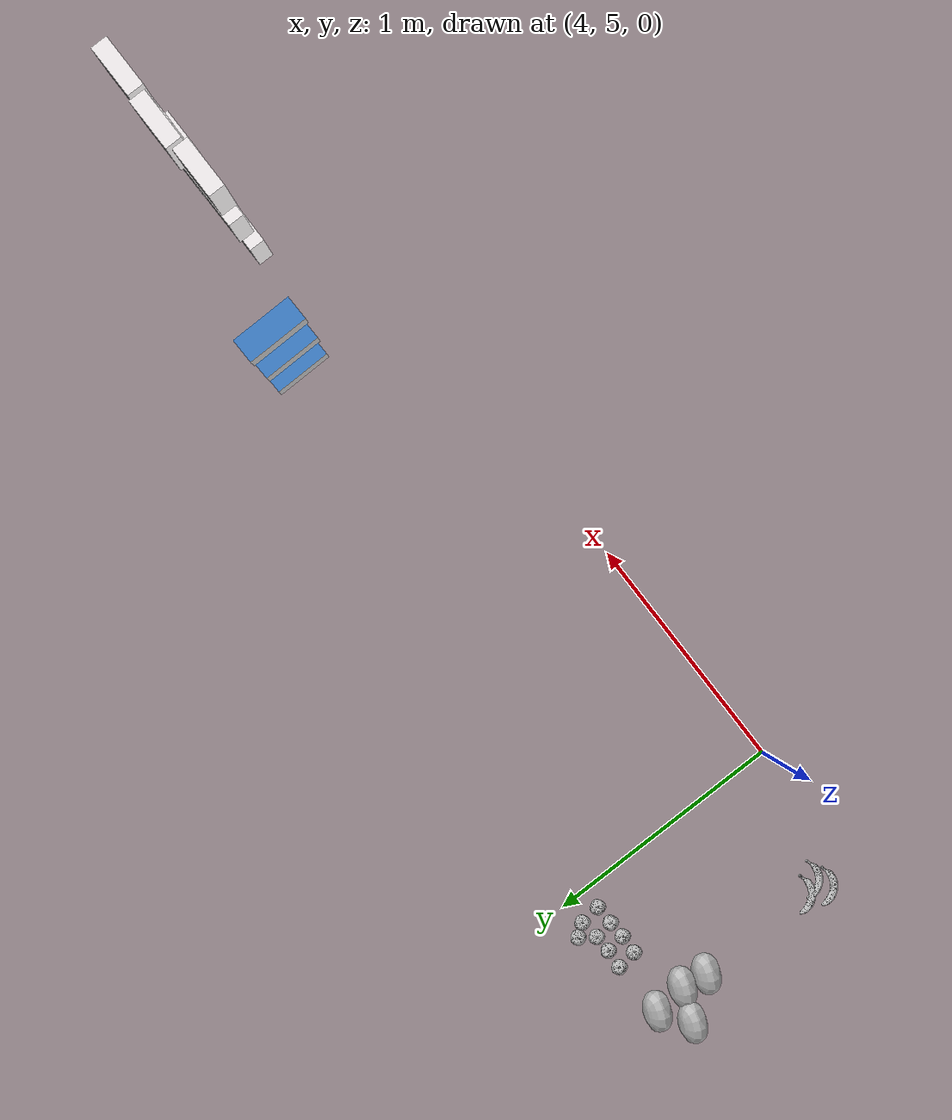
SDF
<sdf version="1.6">
 <world name="default">
  <model name="banana_clone_4">
   <link name="link_0">
    <inertial>
     <mass>1</mass>
     <inertia>
      <ixx>0.166667</ixx>
      <ixy>0</ixy>
      <ixz>0</ixz>
      <iyy>0.166667</iyy>
      <iyz>0</iyz>
      <izz>0.166667</izz>
     </inertia>
    </inertial>
    <visual name="visual">
     <geometry><mesh><uri>model://banana/meshes/banana.dae</uri><scale>1 1 1</scale></mesh></geometry>
    </visual>
    <collision name="collision">
     <geometry><mesh><uri>model://banana/meshes/banana.dae</uri><scale>1 1 1</scale></mesh></geometry>
     <surface>
      <friction>
       <ode><mu>1</mu><mu2>1</mu2><fdir1>0 0 0</fdir1><slip1>0</slip1><slip2>0</slip2></ode>
       <torsional>
        <coefficient>1</coefficient>
        <patch_radius>0</patch_radius>
        <surface_radius>0</surface_radius>
        <use_patch_radius>1</use_patch_radius>
        <ode><slip>0</slip></ode>
       </torsional>
      </friction>
      <bounce><restitution_coefficient>0</restitution_coefficient><threshold>1e+06</threshold></bounce>
      <contact>
       <collide_without_contact>0</collide_without_contact>
       <collide_without_contact_bitmask>1</collide_without_contact_bitmask>
       <collide_bitmask>1</collide_bitmask>
       <ode>
        <soft_cfm>0</soft_cfm>
        <soft_erp>0.2</soft_erp>
        <kp>1e+13</kp>
        <kd>1</kd>
        <max_vel>0.01</max_vel>
        <min_depth>0</min_depth>
       </ode>
       <bullet>
        <split_impulse>1</split_impulse>
        <split_impulse_penetration_threshold>-0.01</split_impulse_penetration_threshold>
        <soft_cfm>0</soft_cfm>
        <soft_erp>0.2</soft_erp>
        <kp>1e+13</kp>
        <kd>1</kd>
       </bullet>
      </contact>
     </surface>
    </collision>
   </link>
   <static>1</static>
   <pose>3.68859 5.18166 0.868134 0 -0 0</pose>
  </model>
  <model name="banana_clone_5">
   <link name="link_0">
    <inertial>
     <mass>1</mass>
     <inertia>
      <ixx>0.166667</ixx>
      <ixy>0</ixy>
      <ixz>0</ixz>
      <iyy>0.166667</iyy>
      <iyz>0</iyz>
      <izz>0.166667</izz>
     </inertia>
    </inertial>
    <visual name="visual">
     <geometry><mesh><uri>model://banana/meshes/banana.dae</uri><scale>1 1 1</scale></mesh></geometry>
    </visual>
    <collision name="collision">
     <geometry><mesh><uri>model://banana/meshes/banana.dae</uri><scale>1 1 1</scale></mesh></geometry>
     <surface>
      <friction>
       <ode><mu>1</mu><mu2>1</mu2><fdir1>0 0 0</fdir1><slip1>0</slip1><slip2>0</slip2></ode>
       <torsional>
        <coefficient>1</coefficient>
        <patch_radius>0</patch_radius>
        <surface_radius>0</surface_radius>
        <use_patch_radius>1</use_patch_radius>
        <ode><slip>0</slip></ode>
       </torsional>
      </friction>
      <bounce><restitution_coefficient>0</restitution_coefficient><threshold>1e+06</threshold></bounce>
      <contact>
       <collide_without_contact>0</collide_without_contact>
       <collide_without_contact_bitmask>1</collide_without_contact_bitmask>
       <collide_bitmask>1</collide_bitmask>
       <ode>
        <soft_cfm>0</soft_cfm>
        <soft_erp>0.2</soft_erp>
        <kp>1e+13</kp>
        <kd>1</kd>
        <max_vel>0.01</max_vel>
        <min_depth>0</min_depth>
       </ode>
       <bullet>
        <split_impulse>1</split_impulse>
        <split_impulse_penetration_threshold>-0.01</split_impulse_penetration_threshold>
        <soft_cfm>0</soft_cfm>
        <soft_erp>0.2</soft_erp>
        <kp>1e+13</kp>
        <kd>1</kd>
       </bullet>
      </contact>
     </surface>
    </collision>
   </link>
   <static>1</static>
   <pose>3.63936 5.15513 0.868134 0 -0 0</pose>
  </model>
  <model name="banana_clone_11">
   <link name="link_0">
    <inertial>
     <mass>1</mass>
     <inertia>
      <ixx>0.166667</ixx>
      <ixy>0</ixy>
      <ixz>0</ixz>
      <iyy>0.166667</iyy>
      <iyz>0</iyz>
      <izz>0.166667</izz>
     </inertia>
    </inertial>
    <visual name="visual">
     <geometry><mesh><uri>model://banana/meshes/banana.dae</uri><scale>1 1 1</scale></mesh></geometry>
    </visual>
    <collision name="collision">
     <geometry><mesh><uri>model://banana/meshes/banana.dae</uri><scale>1 1 1</scale></mesh></geometry>
     <surface>
      <friction>
       <ode><mu>1</mu><mu2>1</mu2><fdir1>0 0 0</fdir1><slip1>0</slip1><slip2>0</slip2></ode>
       <torsional>
        <coefficient>1</coefficient>
        <patch_radius>0</patch_radius>
        <surface_radius>0</surface_radius>
        <use_patch_radius>1</use_patch_radius>
        <ode><slip>0</slip></ode>
       </torsional>
      </friction>
      <bounce><restitution_coefficient>0</restitution_coefficient><threshold>1e+06</threshold></bounce>
      <contact>
       <collide_without_contact>0</collide_without_contact>
       <collide_without_contact_bitmask>1</collide_without_contact_bitmask>
       <collide_bitmask>1</collide_bitmask>
       <ode>
        <soft_cfm>0</soft_cfm>
        <soft_erp>0.2</soft_erp>
        <kp>1e+13</kp>
        <kd>1</kd>
        <max_vel>0.01</max_vel>
        <min_depth>0</min_depth>
       </ode>
       <bullet>
        <split_impulse>1</split_impulse>
        <split_impulse_penetration_threshold>-0.01</split_impulse_penetration_threshold>
        <soft_cfm>0</soft_cfm>
        <soft_erp>0.2</soft_erp>
        <kp>1e+13</kp>
        <kd>1</kd>
       </bullet>
      </contact>
     </surface>
    </collision>
   </link>
   <static>1</static>
   <pose>3.66313 5.23262 0.868134 0 -0 0</pose>
  </model>
  <model name="apple">
   <link name="link_0">
    <inertial>
     <mass>1</mass>
     <inertia>
      <ixx>0.166667</ixx>
      <ixy>0</ixy>
      <ixz>0</ixz>
      <iyy>0.166667</iyy>
      <iyz>0</iyz>
      <izz>0.166667</izz>
     </inertia>
    </inertial>
    <visual name="visual">
     <geometry><mesh><uri>model://apple/meshes/apple.dae</uri><scale>1 1 1</scale></mesh></geometry>
    </visual>
    <collision name="collision">
     <geometry><mesh><uri>model://apple/meshes/apple.dae</uri><scale>1 1 1</scale></mesh></geometry>
     <surface>
      <friction>
       <ode><mu>1</mu><mu2>1</mu2><fdir1>0 0 0</fdir1><slip1>0</slip1><slip2>0</slip2></ode>
       <torsional>
        <coefficient>1</coefficient>
        <patch_radius>0</patch_radius>
        <surface_radius>0</surface_radius>
        <use_patch_radius>1</use_patch_radius>
        <ode><slip>0</slip></ode>
       </torsional>
      </friction>
      <bounce><restitution_coefficient>0</restitution_coefficient><threshold>1e+06</threshold></bounce>
      <contact>
       <collide_without_contact>0</collide_without_contact>
       <collide_without_contact_bitmask>1</collide_without_contact_bitmask>
       <collide_bitmask>1</collide_bitmask>
       <ode>
        <soft_cfm>0</soft_cfm>
        <soft_erp>0.2</soft_erp>
        <kp>1e+13</kp>
        <kd>1</kd>
        <max_vel>0.01</max_vel>
        <min_depth>0</min_depth>
       </ode>
       <bullet>
        <split_impulse>1</split_impulse>
        <split_impulse_penetration_threshold>-0.01</split_impulse_penetration_threshold>
        <soft_cfm>0</soft_cfm>
        <soft_erp>0.2</soft_erp>
        <kp>1e+13</kp>
        <kd>1</kd>
       </bullet>
      </contact>
     </surface>
    </collision>
   </link>
   <static>1</static>
   <pose>4.07293 5.83603 0.862702 0 -0 0</pose>
  </model>
  <model name="apple_clone">
   <link name="link_0">
    <inertial>
     <mass>1</mass>
     <inertia>
      <ixx>0.166667</ixx>
      <ixy>0</ixy>
      <ixz>0</ixz>
      <iyy>0.166667</iyy>
      <iyz>0</iyz>
      <izz>0.166667</izz>
     </inertia>
    </inertial>
    <visual name="visual">
     <geometry><mesh><uri>model://apple/meshes/apple.dae</uri><scale>1 1 1</scale></mesh></geometry>
    </visual>
    <collision name="collision">
     <geometry><mesh><uri>model://apple/meshes/apple.dae</uri><scale>1 1 1</scale></mesh></geometry>
     <surface>
      <friction>
       <ode><mu>1</mu><mu2>1</mu2><fdir1>0 0 0</fdir1><slip1>0</slip1><slip2>0</slip2></ode>
       <torsional>
        <coefficient>1</coefficient>
        <patch_radius>0</patch_radius>
        <surface_radius>0</surface_radius>
        <use_patch_radius>1</use_patch_radius>
        <ode><slip>0</slip></ode>
       </torsional>
      </friction>
      <bounce><restitution_coefficient>0</restitution_coefficient><threshold>1e+06</threshold></bounce>
      <contact>
       <collide_without_contact>0</collide_without_contact>
       <collide_without_contact_bitmask>1</collide_without_contact_bitmask>
       <collide_bitmask>1</collide_bitmask>
       <ode>
        <soft_cfm>0</soft_cfm>
        <soft_erp>0.2</soft_erp>
        <kp>1e+13</kp>
        <kd>1</kd>
        <max_vel>0.01</max_vel>
        <min_depth>0</min_depth>
       </ode>
       <bullet>
        <split_impulse>1</split_impulse>
        <split_impulse_penetration_threshold>-0.01</split_impulse_penetration_threshold>
        <soft_cfm>0</soft_cfm>
        <soft_erp>0.2</soft_erp>
        <kp>1e+13</kp>
        <kd>1</kd>
       </bullet>
      </contact>
     </surface>
    </collision>
   </link>
   <static>1</static>
   <pose>4.00379 5.8338 0.862702 0 -0 0</pose>
  </model>
  <model name="apple_clone_1">
   <link name="link_0">
    <inertial>
     <mass>1</mass>
     <inertia>
      <ixx>0.166667</ixx>
      <ixy>0</ixy>
      <ixz>0</ixz>
      <iyy>0.166667</iyy>
      <iyz>0</iyz>
      <izz>0.166667</izz>
     </inertia>
    </inertial>
    <visual name="visual">
     <geometry><mesh><uri>model://apple/meshes/apple.dae</uri><scale>1 1 1</scale></mesh></geometry>
    </visual>
    <collision name="collision">
     <geometry><mesh><uri>model://apple/meshes/apple.dae</uri><scale>1 1 1</scale></mesh></geometry>
     <surface>
      <friction>
       <ode><mu>1</mu><mu2>1</mu2><fdir1>0 0 0</fdir1><slip1>0</slip1><slip2>0</slip2></ode>
       <torsional>
        <coefficient>1</coefficient>
        <patch_radius>0</patch_radius>
        <surface_radius>0</surface_radius>
        <use_patch_radius>1</use_patch_radius>
        <ode><slip>0</slip></ode>
       </torsional>
      </friction>
      <bounce><restitution_coefficient>0</restitution_coefficient><threshold>1e+06</threshold></bounce>
      <contact>
       <collide_without_contact>0</collide_without_contact>
       <collide_without_contact_bitmask>1</collide_without_contact_bitmask>
       <collide_bitmask>1</collide_bitmask>
       <ode>
        <soft_cfm>0</soft_cfm>
        <soft_erp>0.2</soft_erp>
        <kp>1e+13</kp>
        <kd>1</kd>
        <max_vel>0.01</max_vel>
        <min_depth>0</min_depth>
       </ode>
       <bullet>
        <split_impulse>1</split_impulse>
        <split_impulse_penetration_threshold>-0.01</split_impulse_penetration_threshold>
        <soft_cfm>0</soft_cfm>
        <soft_erp>0.2</soft_erp>
        <kp>1e+13</kp>
        <kd>1</kd>
       </bullet>
      </contact>
     </surface>
    </collision>
   </link>
   <static>1</static>
   <pose>3.94118 5.82977 0.862702 0 -0 0</pose>
  </model>
  <model name="apple_clone_2">
   <link name="link_0">
    <inertial>
     <mass>1</mass>
     <inertia>
      <ixx>0.166667</ixx>
      <ixy>0</ixy>
      <ixz>0</ixz>
      <iyy>0.166667</iyy>
      <iyz>0</iyz>
      <izz>0.166667</izz>
     </inertia>
    </inertial>
    <visual name="visual">
     <geometry><mesh><uri>model://apple/meshes/apple.dae</uri><scale>1 1 1</scale></mesh></geometry>
    </visual>
    <collision name="collision">
     <geometry><mesh><uri>model://apple/meshes/apple.dae</uri><scale>1 1 1</scale></mesh></geometry>
     <surface>
      <friction>
       <ode><mu>1</mu><mu2>1</mu2><fdir1>0 0 0</fdir1><slip1>0</slip1><slip2>0</slip2></ode>
       <torsional>
        <coefficient>1</coefficient>
        <patch_radius>0</patch_radius>
        <surface_radius>0</surface_radius>
        <use_patch_radius>1</use_patch_radius>
        <ode><slip>0</slip></ode>
       </torsional>
      </friction>
      <bounce><restitution_coefficient>0</restitution_coefficient><threshold>1e+06</threshold></bounce>
      <contact>
       <collide_without_contact>0</collide_without_contact>
       <collide_without_contact_bitmask>1</collide_without_contact_bitmask>
       <collide_bitmask>1</collide_bitmask>
       <ode>
        <soft_cfm>0</soft_cfm>
        <soft_erp>0.2</soft_erp>
        <kp>1e+13</kp>
        <kd>1</kd>
        <max_vel>0.01</max_vel>
        <min_depth>0</min_depth>
       </ode>
       <bullet>
        <split_impulse>1</split_impulse>
        <split_impulse_penetration_threshold>-0.01</split_impulse_penetration_threshold>
        <soft_cfm>0</soft_cfm>
        <soft_erp>0.2</soft_erp>
        <kp>1e+13</kp>
        <kd>1</kd>
       </bullet>
      </contact>
     </surface>
    </collision>
   </link>
   <static>1</static>
   <pose>3.874 5.83246 0.862702 0 -0 0</pose>
  </model>
  <model name="apple_clone_3">
   <link name="link_0">
    <inertial>
     <mass>1</mass>
     <inertia>
      <ixx>0.166667</ixx>
      <ixy>0</ixy>
      <ixz>0</ixz>
      <iyy>0.166667</iyy>
      <iyz>0</iyz>
      <izz>0.166667</izz>
     </inertia>
    </inertial>
    <visual name="visual">
     <geometry><mesh><uri>model://apple/meshes/apple.dae</uri><scale>1 1 1</scale></mesh></geometry>
    </visual>
    <collision name="collision">
     <geometry><mesh><uri>model://apple/meshes/apple.dae</uri><scale>1 1 1</scale></mesh></geometry>
     <surface>
      <friction>
       <ode><mu>1</mu><mu2>1</mu2><fdir1>0 0 0</fdir1><slip1>0</slip1><slip2>0</slip2></ode>
       <torsional>
        <coefficient>1</coefficient>
        <patch_radius>0</patch_radius>
        <surface_radius>0</surface_radius>
        <use_patch_radius>1</use_patch_radius>
        <ode><slip>0</slip></ode>
       </torsional>
      </friction>
      <bounce><restitution_coefficient>0</restitution_coefficient><threshold>1e+06</threshold></bounce>
      <contact>
       <collide_without_contact>0</collide_without_contact>
       <collide_without_contact_bitmask>1</collide_without_contact_bitmask>
       <collide_bitmask>1</collide_bitmask>
       <ode>
        <soft_cfm>0</soft_cfm>
        <soft_erp>0.2</soft_erp>
        <kp>1e+13</kp>
        <kd>1</kd>
        <max_vel>0.01</max_vel>
        <min_depth>0</min_depth>
       </ode>
       <bullet>
        <split_impulse>1</split_impulse>
        <split_impulse_penetration_threshold>-0.01</split_impulse_penetration_threshold>
        <soft_cfm>0</soft_cfm>
        <soft_erp>0.2</soft_erp>
        <kp>1e+13</kp>
        <kd>1</kd>
       </bullet>
      </contact>
     </surface>
    </collision>
   </link>
   <static>1</static>
   <pose>3.86465 5.90349 0.862702 0 -0 0</pose>
  </model>
  <model name="apple_clone_4">
   <link name="link_0">
    <inertial>
     <mass>1</mass>
     <inertia>
      <ixx>0.166667</ixx>
      <ixy>0</ixy>
      <ixz>0</ixz>
      <iyy>0.166667</iyy>
      <iyz>0</iyz>
      <izz>0.166667</izz>
     </inertia>
    </inertial>
    <visual name="visual">
     <geometry><mesh><uri>model://apple/meshes/apple.dae</uri><scale>1 1 1</scale></mesh></geometry>
    </visual>
    <collision name="collision">
     <geometry><mesh><uri>model://apple/meshes/apple.dae</uri><scale>1 1 1</scale></mesh></geometry>
     <surface>
      <friction>
       <ode><mu>1</mu><mu2>1</mu2><fdir1>0 0 0</fdir1><slip1>0</slip1><slip2>0</slip2></ode>
       <torsional>
        <coefficient>1</coefficient>
        <patch_radius>0</patch_radius>
        <surface_radius>0</surface_radius>
        <use_patch_radius>1</use_patch_radius>
        <ode><slip>0</slip></ode>
       </torsional>
      </friction>
      <bounce><restitution_coefficient>0</restitution_coefficient><threshold>1e+06</threshold></bounce>
      <contact>
       <collide_without_contact>0</collide_without_contact>
       <collide_without_contact_bitmask>1</collide_without_contact_bitmask>
       <collide_bitmask>1</collide_bitmask>
       <ode>
        <soft_cfm>0</soft_cfm>
        <soft_erp>0.2</soft_erp>
        <kp>1e+13</kp>
        <kd>1</kd>
        <max_vel>0.01</max_vel>
        <min_depth>0</min_depth>
       </ode>
       <bullet>
        <split_impulse>1</split_impulse>
        <split_impulse_penetration_threshold>-0.01</split_impulse_penetration_threshold>
        <soft_cfm>0</soft_cfm>
        <soft_erp>0.2</soft_erp>
        <kp>1e+13</kp>
        <kd>1</kd>
       </bullet>
      </contact>
     </surface>
    </collision>
   </link>
   <static>1</static>
   <pose>3.93205 5.89865 0.862702 0 -0 0</pose>
  </model>
  <model name="apple_clone_5">
   <link name="link_0">
    <inertial>
     <mass>1</mass>
     <inertia>
      <ixx>0.166667</ixx>
      <ixy>0</ixy>
      <ixz>0</ixz>
      <iyy>0.166667</iyy>
      <iyz>0</iyz>
      <izz>0.166667</izz>
     </inertia>
    </inertial>
    <visual name="visual">
     <geometry><mesh><uri>model://apple/meshes/apple.dae</uri><scale>1 1 1</scale></mesh></geometry>
    </visual>
    <collision name="collision">
     <geometry><mesh><uri>model://apple/meshes/apple.dae</uri><scale>1 1 1</scale></mesh></geometry>
     <surface>
      <friction>
       <ode><mu>1</mu><mu2>1</mu2><fdir1>0 0 0</fdir1><slip1>0</slip1><slip2>0</slip2></ode>
       <torsional>
        <coefficient>1</coefficient>
        <patch_radius>0</patch_radius>
        <surface_radius>0</surface_radius>
        <use_patch_radius>1</use_patch_radius>
        <ode><slip>0</slip></ode>
       </torsional>
      </friction>
      <bounce><restitution_coefficient>0</restitution_coefficient><threshold>1e+06</threshold></bounce>
      <contact>
       <collide_without_contact>0</collide_without_contact>
       <collide_without_contact_bitmask>1</collide_without_contact_bitmask>
       <collide_bitmask>1</collide_bitmask>
       <ode>
        <soft_cfm>0</soft_cfm>
        <soft_erp>0.2</soft_erp>
        <kp>1e+13</kp>
        <kd>1</kd>
        <max_vel>0.01</max_vel>
        <min_depth>0</min_depth>
       </ode>
       <bullet>
        <split_impulse>1</split_impulse>
        <split_impulse_penetration_threshold>-0.01</split_impulse_penetration_threshold>
        <soft_cfm>0</soft_cfm>
        <soft_erp>0.2</soft_erp>
        <kp>1e+13</kp>
        <kd>1</kd>
       </bullet>
      </contact>
     </surface>
    </collision>
   </link>
   <static>1</static>
   <pose>3.99433 5.90128 0.862702 0 -0 0</pose>
  </model>
  <model name="apple_clone_6">
   <link name="link_0">
    <inertial>
     <mass>1</mass>
     <inertia>
      <ixx>0.166667</ixx>
      <ixy>0</ixy>
      <ixz>0</ixz>
      <iyy>0.166667</iyy>
      <iyz>0</iyz>
      <izz>0.166667</izz>
     </inertia>
    </inertial>
    <visual name="visual">
     <geometry><mesh><uri>model://apple/meshes/apple.dae</uri><scale>1 1 1</scale></mesh></geometry>
    </visual>
    <collision name="collision">
     <geometry><mesh><uri>model://apple/meshes/apple.dae</uri><scale>1 1 1</scale></mesh></geometry>
     <surface>
      <friction>
       <ode><mu>1</mu><mu2>1</mu2><fdir1>0 0 0</fdir1><slip1>0</slip1><slip2>0</slip2></ode>
       <torsional>
        <coefficient>1</coefficient>
        <patch_radius>0</patch_radius>
        <surface_radius>0</surface_radius>
        <use_patch_radius>1</use_patch_radius>
        <ode><slip>0</slip></ode>
       </torsional>
      </friction>
      <bounce><restitution_coefficient>0</restitution_coefficient><threshold>1e+06</threshold></bounce>
      <contact>
       <collide_without_contact>0</collide_without_contact>
       <collide_without_contact_bitmask>1</collide_without_contact_bitmask>
       <collide_bitmask>1</collide_bitmask>
       <ode>
        <soft_cfm>0</soft_cfm>
        <soft_erp>0.2</soft_erp>
        <kp>1e+13</kp>
        <kd>1</kd>
        <max_vel>0.01</max_vel>
        <min_depth>0</min_depth>
       </ode>
       <bullet>
        <split_impulse>1</split_impulse>
        <split_impulse_penetration_threshold>-0.01</split_impulse_penetration_threshold>
        <soft_cfm>0</soft_cfm>
        <soft_erp>0.2</soft_erp>
        <kp>1e+13</kp>
        <kd>1</kd>
       </bullet>
      </contact>
     </surface>
    </collision>
   </link>
   <static>1</static>
   <pose>4.06365 5.91065 0.862702 0 -0 0</pose>
  </model>
  <model name="apple_clone_11">
   <link name="link_0">
    <inertial>
     <mass>1</mass>
     <inertia>
      <ixx>0.166667</ixx>
      <ixy>0</ixy>
      <ixz>0</ixz>
      <iyy>0.166667</iyy>
      <iyz>0</iyz>
      <izz>0.166667</izz>
     </inertia>
    </inertial>
    <visual name="visual">
     <geometry><mesh><uri>model://apple/meshes/apple.dae</uri><scale>1 1 1</scale></mesh></geometry>
    </visual>
    <collision name="collision">
     <geometry><mesh><uri>model://apple/meshes/apple.dae</uri><scale>1 1 1</scale></mesh></geometry>
     <surface>
      <friction>
       <ode><mu>1</mu><mu2>1</mu2><fdir1>0 0 0</fdir1><slip1>0</slip1><slip2>0</slip2></ode>
       <torsional>
        <coefficient>1</coefficient>
        <patch_radius>0</patch_radius>
        <surface_radius>0</surface_radius>
        <use_patch_radius>1</use_patch_radius>
        <ode><slip>0</slip></ode>
       </torsional>
      </friction>
      <bounce><restitution_coefficient>0</restitution_coefficient><threshold>1e+06</threshold></bounce>
      <contact>
       <collide_without_contact>0</collide_without_contact>
       <collide_without_contact_bitmask>1</collide_without_contact_bitmask>
       <collide_bitmask>1</collide_bitmask>
       <ode>
        <soft_cfm>0</soft_cfm>
        <soft_erp>0.2</soft_erp>
        <kp>1e+13</kp>
        <kd>1</kd>
        <max_vel>0.01</max_vel>
        <min_depth>0</min_depth>
       </ode>
       <bullet>
        <split_impulse>1</split_impulse>
        <split_impulse_penetration_threshold>-0.01</split_impulse_penetration_threshold>
        <soft_cfm>0</soft_cfm>
        <soft_erp>0.2</soft_erp>
        <kp>1e+13</kp>
        <kd>1</kd>
       </bullet>
      </contact>
     </surface>
    </collision>
   </link>
   <static>1</static>
   <pose>4.03165 5.95299 0.862702 0 -0 0</pose>
  </model>
  <model name="mango_clone_4">
   <link name="link_0">
    <inertial>
     <mass>1</mass>
     <inertia>
      <ixx>0.166667</ixx>
      <ixy>0</ixy>
      <ixz>0</ixz>
      <iyy>0.166667</iyy>
      <iyz>0</iyz>
      <izz>0.166667</izz>
     </inertia>
    </inertial>
    <visual name="visual">
     <geometry><mesh><uri>model://mango/meshes/mango.dae</uri><scale>1 1 1</scale></mesh></geometry>
    </visual>
    <collision name="collision">
     <geometry><mesh><uri>model://mango/meshes/mango.dae</uri><scale>1 1 1</scale></mesh></geometry>
     <surface>
      <friction>
       <ode><mu>1</mu><mu2>1</mu2><fdir1>0 0 0</fdir1><slip1>0</slip1><slip2>0</slip2></ode>
       <torsional>
        <coefficient>1</coefficient>
        <patch_radius>0</patch_radius>
        <surface_radius>0</surface_radius>
        <use_patch_radius>1</use_patch_radius>
        <ode><slip>0</slip></ode>
       </torsional>
      </friction>
      <bounce><restitution_coefficient>0</restitution_coefficient><threshold>1e+06</threshold></bounce>
      <contact>
       <collide_without_contact>0</collide_without_contact>
       <collide_without_contact_bitmask>1</collide_without_contact_bitmask>
       <collide_bitmask>1</collide_bitmask>
       <ode>
        <soft_cfm>0</soft_cfm>
        <soft_erp>0.2</soft_erp>
        <kp>1e+13</kp>
        <kd>1</kd>
        <max_vel>0.01</max_vel>
        <min_depth>0</min_depth>
       </ode>
       <bullet>
        <split_impulse>1</split_impulse>
        <split_impulse_penetration_threshold>-0.01</split_impulse_penetration_threshold>
        <soft_cfm>0</soft_cfm>
        <soft_erp>0.2</soft_erp>
        <kp>1e+13</kp>
        <kd>1</kd>
       </bullet>
      </contact>
     </surface>
    </collision>
   </link>
   <static>1</static>
   <pose>3.6463 5.80697 1.08404 0 -0 0</pose>
  </model>
  <model name="mango_clone_5">
   <link name="link_0">
    <inertial>
     <mass>1</mass>
     <inertia>
      <ixx>0.166667</ixx>
      <ixy>0</ixy>
      <ixz>0</ixz>
      <iyy>0.166667</iyy>
      <iyz>0</iyz>
      <izz>0.166667</izz>
     </inertia>
    </inertial>
    <visual name="visual">
     <geometry><mesh><uri>model://mango/meshes/mango.dae</uri><scale>1 1 1</scale></mesh></geometry>
    </visual>
    <collision name="collision">
     <geometry><mesh><uri>model://mango/meshes/mango.dae</uri><scale>1 1 1</scale></mesh></geometry>
     <surface>
      <friction>
       <ode><mu>1</mu><mu2>1</mu2><fdir1>0 0 0</fdir1><slip1>0</slip1><slip2>0</slip2></ode>
       <torsional>
        <coefficient>1</coefficient>
        <patch_radius>0</patch_radius>
        <surface_radius>0</surface_radius>
        <use_patch_radius>1</use_patch_radius>
        <ode><slip>0</slip></ode>
       </torsional>
      </friction>
      <bounce><restitution_coefficient>0</restitution_coefficient><threshold>1e+06</threshold></bounce>
      <contact>
       <collide_without_contact>0</collide_without_contact>
       <collide_without_contact_bitmask>1</collide_without_contact_bitmask>
       <collide_bitmask>1</collide_bitmask>
       <ode>
        <soft_cfm>0</soft_cfm>
        <soft_erp>0.2</soft_erp>
        <kp>1e+13</kp>
        <kd>1</kd>
        <max_vel>0.01</max_vel>
        <min_depth>0</min_depth>
       </ode>
       <bullet>
        <split_impulse>1</split_impulse>
        <split_impulse_penetration_threshold>-0.01</split_impulse_penetration_threshold>
        <soft_cfm>0</soft_cfm>
        <soft_erp>0.2</soft_erp>
        <kp>1e+13</kp>
        <kd>1</kd>
       </bullet>
      </contact>
     </surface>
    </collision>
   </link>
   <static>1</static>
   <pose>3.74611 5.67241 1.08404 0 -0 0</pose>
  </model>
  <model name="mango_clone_6">
   <link name="link_0">
    <inertial>
     <mass>1</mass>
     <inertia>
      <ixx>0.166667</ixx>
      <ixy>0</ixy>
      <ixz>0</ixz>
      <iyy>0.166667</iyy>
      <iyz>0</iyz>
      <izz>0.166667</izz>
     </inertia>
    </inertial>
    <visual name="visual">
     <geometry><mesh><uri>model://mango/meshes/mango.dae</uri><scale>1 1 1</scale></mesh></geometry>
    </visual>
    <collision name="collision">
     <geometry><mesh><uri>model://mango/meshes/mango.dae</uri><scale>1 1 1</scale></mesh></geometry>
     <surface>
      <friction>
       <ode><mu>1</mu><mu2>1</mu2><fdir1>0 0 0</fdir1><slip1>0</slip1><slip2>0</slip2></ode>
       <torsional>
        <coefficient>1</coefficient>
        <patch_radius>0</patch_radius>
        <surface_radius>0</surface_radius>
        <use_patch_radius>1</use_patch_radius>
        <ode><slip>0</slip></ode>
       </torsional>
      </friction>
      <bounce><restitution_coefficient>0</restitution_coefficient><threshold>1e+06</threshold></bounce>
      <contact>
       <collide_without_contact>0</collide_without_contact>
       <collide_without_contact_bitmask>1</collide_without_contact_bitmask>
       <collide_bitmask>1</collide_bitmask>
       <ode>
        <soft_cfm>0</soft_cfm>
        <soft_erp>0.2</soft_erp>
        <kp>1e+13</kp>
        <kd>1</kd>
        <max_vel>0.01</max_vel>
        <min_depth>0</min_depth>
       </ode>
       <bullet>
        <split_impulse>1</split_impulse>
        <split_impulse_penetration_threshold>-0.01</split_impulse_penetration_threshold>
        <soft_cfm>0</soft_cfm>
        <soft_erp>0.2</soft_erp>
        <kp>1e+13</kp>
        <kd>1</kd>
       </bullet>
      </contact>
     </surface>
    </collision>
   </link>
   <static>1</static>
   <pose>3.76041 5.76153 1.08404 0 -0 0</pose>
  </model>
  <model name="mango_clone_7">
   <link name="link_0">
    <inertial>
     <mass>1</mass>
     <inertia>
      <ixx>0.166667</ixx>
      <ixy>0</ixy>
      <ixz>0</ixz>
      <iyy>0.166667</iyy>
      <iyz>0</iyz>
      <izz>0.166667</izz>
     </inertia>
    </inertial>
    <visual name="visual">
     <geometry><mesh><uri>model://mango/meshes/mango.dae</uri><scale>1 1 1</scale></mesh></geometry>
    </visual>
    <collision name="collision">
     <geometry><mesh><uri>model://mango/meshes/mango.dae</uri><scale>1 1 1</scale></mesh></geometry>
     <surface>
      <friction>
       <ode><mu>1</mu><mu2>1</mu2><fdir1>0 0 0</fdir1><slip1>0</slip1><slip2>0</slip2></ode>
       <torsional>
        <coefficient>1</coefficient>
        <patch_radius>0</patch_radius>
        <surface_radius>0</surface_radius>
        <use_patch_radius>1</use_patch_radius>
        <ode><slip>0</slip></ode>
       </torsional>
      </friction>
      <bounce><restitution_coefficient>0</restitution_coefficient><threshold>1e+06</threshold></bounce>
      <contact>
       <collide_without_contact>0</collide_without_contact>
       <collide_without_contact_bitmask>1</collide_without_contact_bitmask>
       <collide_bitmask>1</collide_bitmask>
       <ode>
        <soft_cfm>0</soft_cfm>
        <soft_erp>0.2</soft_erp>
        <kp>1e+13</kp>
        <kd>1</kd>
        <max_vel>0.01</max_vel>
        <min_depth>0</min_depth>
       </ode>
       <bullet>
        <split_impulse>1</split_impulse>
        <split_impulse_penetration_threshold>-0.01</split_impulse_penetration_threshold>
        <soft_cfm>0</soft_cfm>
        <soft_erp>0.2</soft_erp>
        <kp>1e+13</kp>
        <kd>1</kd>
       </bullet>
      </contact>
     </surface>
    </collision>
   </link>
   <static>1</static>
   <pose>3.74786 5.87646 1.08404 0 -0 0</pose>
  </model>
  <model name="cereals">
   <link name="link_1">
    <inertial>
     <mass>1</mass>
     <inertia>
      <ixx>0.166667</ixx>
      <ixy>0</ixy>
      <ixz>0</ixz>
      <iyy>0.166667</iyy>
      <iyz>0</iyz>
      <izz>0.166667</izz>
     </inertia>
    </inertial>
    <visual name="visual">
     <geometry><mesh><uri>model://cereals/meshes/cereals.dae</uri><scale>0.6 0.6 0.6</scale></mesh></geometry>
    </visual>
    <collision name="collision">
     <geometry><mesh><uri>model://cereals/meshes/cereals.dae</uri><scale>0.6 0.6 0.6</scale></mesh></geometry>
     <surface>
      <friction>
       <ode><mu>1</mu><mu2>1</mu2><fdir1>0 0 0</fdir1><slip1>0</slip1><slip2>0</slip2></ode>
       <torsional>
        <coefficient>1</coefficient>
        <patch_radius>0</patch_radius>
        <surface_radius>0</surface_radius>
        <use_patch_radius>1</use_patch_radius>
        <ode><slip>0</slip></ode>
       </torsional>
      </friction>
      <bounce><restitution_coefficient>0</restitution_coefficient><threshold>1e+06</threshold></bounce>
      <contact>
       <collide_without_contact>0</collide_without_contact>
       <collide_without_contact_bitmask>1</collide_without_contact_bitmask>
       <collide_bitmask>1</collide_bitmask>
       <ode>
        <soft_cfm>0</soft_cfm>
        <soft_erp>0.2</soft_erp>
        <kp>1e+13</kp>
        <kd>1</kd>
        <max_vel>0.01</max_vel>
        <min_depth>0</min_depth>
       </ode>
       <bullet>
        <split_impulse>1</split_impulse>
        <split_impulse_penetration_threshold>-0.01</split_impulse_penetration_threshold>
        <soft_cfm>0</soft_cfm>
        <soft_erp>0.2</soft_erp>
        <kp>1e+13</kp>
        <kd>1</kd>
       </bullet>
      </contact>
     </surface>
    </collision>
   </link>
   <static>1</static>
   <pose>6.83503 5.36 0.980316 0 -0 0</pose>
  </model>
  <model name="cereals_clone">
   <link name="link_1">
    <inertial>
     <mass>1</mass>
     <inertia>
      <ixx>0.166667</ixx>
      <ixy>0</ixy>
      <ixz>0</ixz>
      <iyy>0.166667</iyy>
      <iyz>0</iyz>
      <izz>0.166667</izz>
     </inertia>
    </inertial>
    <visual name="visual">
     <geometry><mesh><uri>model://cereals/meshes/cereals.dae</uri><scale>0.6 0.6 0.6</scale></mesh></geometry>
    </visual>
    <collision name="collision">
     <geometry><mesh><uri>model://cereals/meshes/cereals.dae</uri><scale>0.6 0.6 0.6</scale></mesh></geometry>
     <surface>
      <friction>
       <ode><mu>1</mu><mu2>1</mu2><fdir1>0 0 0</fdir1><slip1>0</slip1><slip2>0</slip2></ode>
       <torsional>
        <coefficient>1</coefficient>
        <patch_radius>0</patch_radius>
        <surface_radius>0</surface_radius>
        <use_patch_radius>1</use_patch_radius>
        <ode><slip>0</slip></ode>
       </torsional>
      </friction>
      <bounce><restitution_coefficient>0</restitution_coefficient><threshold>1e+06</threshold></bounce>
      <contact>
       <collide_without_contact>0</collide_without_contact>
       <collide_without_contact_bitmask>1</collide_without_contact_bitmask>
       <collide_bitmask>1</collide_bitmask>
       <ode>
        <soft_cfm>0</soft_cfm>
        <soft_erp>0.2</soft_erp>
        <kp>1e+13</kp>
        <kd>1</kd>
        <max_vel>0.01</max_vel>
        <min_depth>0</min_depth>
       </ode>
       <bullet>
        <split_impulse>1</split_impulse>
        <split_impulse_penetration_threshold>-0.01</split_impulse_penetration_threshold>
        <soft_cfm>0</soft_cfm>
        <soft_erp>0.2</soft_erp>
        <kp>1e+13</kp>
        <kd>1</kd>
       </bullet>
      </contact>
     </surface>
    </collision>
   </link>
   <static>1</static>
   <pose>7.04548 5.37569 0.980316 0 -0 0</pose>
  </model>
  <model name="cereals_clone_0">
   <link name="link_1">
    <inertial>
     <mass>1</mass>
     <inertia>
      <ixx>0.166667</ixx>
      <ixy>0</ixy>
      <ixz>0</ixz>
      <iyy>0.166667</iyy>
      <iyz>0</iyz>
      <izz>0.166667</izz>
     </inertia>
    </inertial>
    <visual name="visual">
     <geometry><mesh><uri>model://cereals/meshes/cereals.dae</uri><scale>0.6 0.6 0.6</scale></mesh></geometry>
    </visual>
    <collision name="collision">
     <geometry><mesh><uri>model://cereals/meshes/cereals.dae</uri><scale>0.6 0.6 0.6</scale></mesh></geometry>
     <surface>
      <friction>
       <ode><mu>1</mu><mu2>1</mu2><fdir1>0 0 0</fdir1><slip1>0</slip1><slip2>0</slip2></ode>
       <torsional>
        <coefficient>1</coefficient>
        <patch_radius>0</patch_radius>
        <surface_radius>0</surface_radius>
        <use_patch_radius>1</use_patch_radius>
        <ode><slip>0</slip></ode>
       </torsional>
      </friction>
      <bounce><restitution_coefficient>0</restitution_coefficient><threshold>1e+06</threshold></bounce>
      <contact>
       <collide_without_contact>0</collide_without_contact>
       <collide_without_contact_bitmask>1</collide_without_contact_bitmask>
       <collide_bitmask>1</collide_bitmask>
       <ode>
        <soft_cfm>0</soft_cfm>
        <soft_erp>0.2</soft_erp>
        <kp>1e+13</kp>
        <kd>1</kd>
        <max_vel>0.01</max_vel>
        <min_depth>0</min_depth>
       </ode>
       <bullet>
        <split_impulse>1</split_impulse>
        <split_impulse_penetration_threshold>-0.01</split_impulse_penetration_threshold>
        <soft_cfm>0</soft_cfm>
        <soft_erp>0.2</soft_erp>
        <kp>1e+13</kp>
        <kd>1</kd>
       </bullet>
      </contact>
     </surface>
    </collision>
   </link>
   <static>1</static>
   <pose>7.25972 5.36741 0.980316 0 -0 0</pose>
  </model>
  <model name="cereals_clone_1">
   <link name="link_1">
    <inertial>
     <mass>1</mass>
     <inertia>
      <ixx>0.166667</ixx>
      <ixy>0</ixy>
      <ixz>0</ixz>
      <iyy>0.166667</iyy>
      <iyz>0</iyz>
      <izz>0.166667</izz>
     </inertia>
    </inertial>
    <visual name="visual">
     <geometry><mesh><uri>model://cereals/meshes/cereals.dae</uri><scale>0.6 0.6 0.6</scale></mesh></geometry>
    </visual>
    <collision name="collision">
     <geometry><mesh><uri>model://cereals/meshes/cereals.dae</uri><scale>0.6 0.6 0.6</scale></mesh></geometry>
     <surface>
      <friction>
       <ode><mu>1</mu><mu2>1</mu2><fdir1>0 0 0</fdir1><slip1>0</slip1><slip2>0</slip2></ode>
       <torsional>
        <coefficient>1</coefficient>
        <patch_radius>0</patch_radius>
        <surface_radius>0</surface_radius>
        <use_patch_radius>1</use_patch_radius>
        <ode><slip>0</slip></ode>
       </torsional>
      </friction>
      <bounce><restitution_coefficient>0</restitution_coefficient><threshold>1e+06</threshold></bounce>
      <contact>
       <collide_without_contact>0</collide_without_contact>
       <collide_without_contact_bitmask>1</collide_without_contact_bitmask>
       <collide_bitmask>1</collide_bitmask>
       <ode>
        <soft_cfm>0</soft_cfm>
        <soft_erp>0.2</soft_erp>
        <kp>1e+13</kp>
        <kd>1</kd>
        <max_vel>0.01</max_vel>
        <min_depth>0</min_depth>
       </ode>
       <bullet>
        <split_impulse>1</split_impulse>
        <split_impulse_penetration_threshold>-0.01</split_impulse_penetration_threshold>
        <soft_cfm>0</soft_cfm>
        <soft_erp>0.2</soft_erp>
        <kp>1e+13</kp>
        <kd>1</kd>
       </bullet>
      </contact>
     </surface>
    </collision>
   </link>
   <static>1</static>
   <pose>6.82966 5.36061 0.551019 0 -0 0</pose>
  </model>
  <model name="cereals_clone_1_clone">
   <link name="link_1">
    <inertial>
     <mass>1</mass>
     <inertia>
      <ixx>0.166667</ixx>
      <ixy>0</ixy>
      <ixz>0</ixz>
      <iyy>0.166667</iyy>
      <iyz>0</iyz>
      <izz>0.166667</izz>
     </inertia>
    </inertial>
    <visual name="visual">
     <geometry><mesh><uri>model://cereals/meshes/cereals.dae</uri><scale>0.6 0.6 0.6</scale></mesh></geometry>
    </visual>
    <collision name="collision">
     <geometry><mesh><uri>model://cereals/meshes/cereals.dae</uri><scale>0.6 0.6 0.6</scale></mesh></geometry>
     <surface>
      <friction>
       <ode><mu>1</mu><mu2>1</mu2><fdir1>0 0 0</fdir1><slip1>0</slip1><slip2>0</slip2></ode>
       <torsional>
        <coefficient>1</coefficient>
        <patch_radius>0</patch_radius>
        <surface_radius>0</surface_radius>
        <use_patch_radius>1</use_patch_radius>
        <ode><slip>0</slip></ode>
       </torsional>
      </friction>
      <bounce><restitution_coefficient>0</restitution_coefficient><threshold>1e+06</threshold></bounce>
      <contact>
       <collide_without_contact>0</collide_without_contact>
       <collide_without_contact_bitmask>1</collide_without_contact_bitmask>
       <collide_bitmask>1</collide_bitmask>
       <ode>
        <soft_cfm>0</soft_cfm>
        <soft_erp>0.2</soft_erp>
        <kp>1e+13</kp>
        <kd>1</kd>
        <max_vel>0.01</max_vel>
        <min_depth>0</min_depth>
       </ode>
       <bullet>
        <split_impulse>1</split_impulse>
        <split_impulse_penetration_threshold>-0.01</split_impulse_penetration_threshold>
        <soft_cfm>0</soft_cfm>
        <soft_erp>0.2</soft_erp>
        <kp>1e+13</kp>
        <kd>1</kd>
       </bullet>
      </contact>
     </surface>
    </collision>
   </link>
   <static>1</static>
   <pose>7.0365 5.36175 0.551019 0 -0 0</pose>
  </model>
  <model name="cereals_clone_1_clone_0">
   <link name="link_1">
    <inertial>
     <mass>1</mass>
     <inertia>
      <ixx>0.166667</ixx>
      <ixy>0</ixy>
      <ixz>0</ixz>
      <iyy>0.166667</iyy>
      <iyz>0</iyz>
      <izz>0.166667</izz>
     </inertia>
    </inertial>
    <visual name="visual">
     <geometry><mesh><uri>model://cereals/meshes/cereals.dae</uri><scale>0.6 0.6 0.6</scale></mesh></geometry>
    </visual>
    <collision name="collision">
     <geometry><mesh><uri>model://cereals/meshes/cereals.dae</uri><scale>0.6 0.6 0.6</scale></mesh></geometry>
     <surface>
      <friction>
       <ode><mu>1</mu><mu2>1</mu2><fdir1>0 0 0</fdir1><slip1>0</slip1><slip2>0</slip2></ode>
       <torsional>
        <coefficient>1</coefficient>
        <patch_radius>0</patch_radius>
        <surface_radius>0</surface_radius>
        <use_patch_radius>1</use_patch_radius>
        <ode><slip>0</slip></ode>
       </torsional>
      </friction>
      <bounce><restitution_coefficient>0</restitution_coefficient><threshold>1e+06</threshold></bounce>
      <contact>
       <collide_without_contact>0</collide_without_contact>
       <collide_without_contact_bitmask>1</collide_without_contact_bitmask>
       <collide_bitmask>1</collide_bitmask>
       <ode>
        <soft_cfm>0</soft_cfm>
        <soft_erp>0.2</soft_erp>
        <kp>1e+13</kp>
        <kd>1</kd>
        <max_vel>0.01</max_vel>
        <min_depth>0</min_depth>
       </ode>
       <bullet>
        <split_impulse>1</split_impulse>
        <split_impulse_penetration_threshold>-0.01</split_impulse_penetration_threshold>
        <soft_cfm>0</soft_cfm>
        <soft_erp>0.2</soft_erp>
        <kp>1e+13</kp>
        <kd>1</kd>
       </bullet>
      </contact>
     </surface>
    </collision>
   </link>
   <static>1</static>
   <pose>7.24163 5.36043 0.551019 0 -0 0</pose>
  </model>
  <model name="cereals_clone_1_clone_1">
   <link name="link_1">
    <inertial>
     <mass>1</mass>
     <inertia>
      <ixx>0.166667</ixx>
      <ixy>0</ixy>
      <ixz>0</ixz>
      <iyy>0.166667</iyy>
      <iyz>0</iyz>
      <izz>0.166667</izz>
     </inertia>
    </inertial>
    <visual name="visual">
     <geometry><mesh><uri>model://cereals/meshes/cereals.dae</uri><scale>0.6 0.6 0.6</scale></mesh></geometry>
    </visual>
    <collision name="collision">
     <geometry><mesh><uri>model://cereals/meshes/cereals.dae</uri><scale>0.6 0.6 0.6</scale></mesh></geometry>
     <surface>
      <friction>
       <ode><mu>1</mu><mu2>1</mu2><fdir1>0 0 0</fdir1><slip1>0</slip1><slip2>0</slip2></ode>
       <torsional>
        <coefficient>1</coefficient>
        <patch_radius>0</patch_radius>
        <surface_radius>0</surface_radius>
        <use_patch_radius>1</use_patch_radius>
        <ode><slip>0</slip></ode>
       </torsional>
      </friction>
      <bounce><restitution_coefficient>0</restitution_coefficient><threshold>1e+06</threshold></bounce>
      <contact>
       <collide_without_contact>0</collide_without_contact>
       <collide_without_contact_bitmask>1</collide_without_contact_bitmask>
       <collide_bitmask>1</collide_bitmask>
       <ode>
        <soft_cfm>0</soft_cfm>
        <soft_erp>0.2</soft_erp>
        <kp>1e+13</kp>
        <kd>1</kd>
        <max_vel>0.01</max_vel>
        <min_depth>0</min_depth>
       </ode>
       <bullet>
        <split_impulse>1</split_impulse>
        <split_impulse_penetration_threshold>-0.01</split_impulse_penetration_threshold>
        <soft_cfm>0</soft_cfm>
        <soft_erp>0.2</soft_erp>
        <kp>1e+13</kp>
        <kd>1</kd>
       </bullet>
      </contact>
     </surface>
    </collision>
   </link>
   <static>1</static>
   <pose>6.82163 5.34771 0.104064 0 -0 0</pose>
  </model>
  <model name="cereals_clone_1_clone_1_clone">
   <link name="link_1">
    <inertial>
     <mass>1</mass>
     <inertia>
      <ixx>0.166667</ixx>
      <ixy>0</ixy>
      <ixz>0</ixz>
      <iyy>0.166667</iyy>
      <iyz>0</iyz>
      <izz>0.166667</izz>
     </inertia>
    </inertial>
    <visual name="visual">
     <geometry><mesh><uri>model://cereals/meshes/cereals.dae</uri><scale>0.6 0.6 0.6</scale></mesh></geometry>
    </visual>
    <collision name="collision">
     <geometry><mesh><uri>model://cereals/meshes/cereals.dae</uri><scale>0.6 0.6 0.6</scale></mesh></geometry>
     <surface>
      <friction>
       <ode><mu>1</mu><mu2>1</mu2><fdir1>0 0 0</fdir1><slip1>0</slip1><slip2>0</slip2></ode>
       <torsional>
        <coefficient>1</coefficient>
        <patch_radius>0</patch_radius>
        <surface_radius>0</surface_radius>
        <use_patch_radius>1</use_patch_radius>
        <ode><slip>0</slip></ode>
       </torsional>
      </friction>
      <bounce><restitution_coefficient>0</restitution_coefficient><threshold>1e+06</threshold></bounce>
      <contact>
       <collide_without_contact>0</collide_without_contact>
       <collide_without_contact_bitmask>1</collide_without_contact_bitmask>
       <collide_bitmask>1</collide_bitmask>
       <ode>
        <soft_cfm>0</soft_cfm>
        <soft_erp>0.2</soft_erp>
        <kp>1e+13</kp>
        <kd>1</kd>
        <max_vel>0.01</max_vel>
        <min_depth>0</min_depth>
       </ode>
       <bullet>
        <split_impulse>1</split_impulse>
        <split_impulse_penetration_threshold>-0.01</split_impulse_penetration_threshold>
        <soft_cfm>0</soft_cfm>
        <soft_erp>0.2</soft_erp>
        <kp>1e+13</kp>
        <kd>1</kd>
       </bullet>
      </contact>
     </surface>
    </collision>
   </link>
   <static>1</static>
   <pose>7.02949 5.34112 0.104064 0 -0 0</pose>
  </model>
  <model name="cereals_clone_1_clone_1_clone_0">
   <link name="link_1">
    <inertial>
     <mass>1</mass>
     <inertia>
      <ixx>0.166667</ixx>
      <ixy>0</ixy>
      <ixz>0</ixz>
      <iyy>0.166667</iyy>
      <iyz>0</iyz>
      <izz>0.166667</izz>
     </inertia>
    </inertial>
    <visual name="visual">
     <geometry><mesh><uri>model://cereals/meshes/cereals.dae</uri><scale>0.6 0.6 0.6</scale></mesh></geometry>
    </visual>
    <collision name="collision">
     <geometry><mesh><uri>model://cereals/meshes/cereals.dae</uri><scale>0.6 0.6 0.6</scale></mesh></geometry>
     <surface>
      <friction>
       <ode><mu>1</mu><mu2>1</mu2><fdir1>0 0 0</fdir1><slip1>0</slip1><slip2>0</slip2></ode>
       <torsional>
        <coefficient>1</coefficient>
        <patch_radius>0</patch_radius>
        <surface_radius>0</surface_radius>
        <use_patch_radius>1</use_patch_radius>
        <ode><slip>0</slip></ode>
       </torsional>
      </friction>
      <bounce><restitution_coefficient>0</restitution_coefficient><threshold>1e+06</threshold></bounce>
      <contact>
       <collide_without_contact>0</collide_without_contact>
       <collide_without_contact_bitmask>1</collide_without_contact_bitmask>
       <collide_bitmask>1</collide_bitmask>
       <ode>
        <soft_cfm>0</soft_cfm>
        <soft_erp>0.2</soft_erp>
        <kp>1e+13</kp>
        <kd>1</kd>
        <max_vel>0.01</max_vel>
        <min_depth>0</min_depth>
       </ode>
       <bullet>
        <split_impulse>1</split_impulse>
        <split_impulse_penetration_threshold>-0.01</split_impulse_penetration_threshold>
        <soft_cfm>0</soft_cfm>
        <soft_erp>0.2</soft_erp>
        <kp>1e+13</kp>
        <kd>1</kd>
       </bullet>
      </contact>
     </surface>
    </collision>
   </link>
   <static>1</static>
   <pose>7.23467 5.33575 0.104064 0 -0 0</pose>
  </model>
  <model name="cookies">
   <link name="link_6">
    <inertial>
     <mass>1</mass>
     <inertia>
      <ixx>0.166667</ixx>
      <ixy>0</ixy>
      <ixz>0</ixz>
      <iyy>0.166667</iyy>
      <iyz>0</iyz>
      <izz>0.166667</izz>
     </inertia>
    </inertial>
    <pose>-1e-06 4e-06 0 0 -0 0</pose>
    <visual name="visual">
     <geometry><mesh><uri>model://cookies/meshes/cookies.dae</uri><scale>1 1 1</scale></mesh></geometry>
    </visual>
    <collision name="collision">
     <geometry><mesh><uri>model://cookies/meshes/cookies.dae</uri><scale>1 1 1</scale></mesh></geometry>
     <surface>
      <friction>
       <ode><mu>1</mu><mu2>1</mu2><fdir1>0 0 0</fdir1><slip1>0</slip1><slip2>0</slip2></ode>
       <torsional>
        <coefficient>1</coefficient>
        <patch_radius>0</patch_radius>
        <surface_radius>0</surface_radius>
        <use_patch_radius>1</use_patch_radius>
        <ode><slip>0</slip></ode>
       </torsional>
      </friction>
      <bounce><restitution_coefficient>0</restitution_coefficient><threshold>1e+06</threshold></bounce>
      <contact>
       <collide_without_contact>0</collide_without_contact>
       <collide_without_contact_bitmask>1</collide_without_contact_bitmask>
       <collide_bitmask>1</collide_bitmask>
       <ode>
        <soft_cfm>0</soft_cfm>
        <soft_erp>0.2</soft_erp>
        <kp>1e+13</kp>
        <kd>1</kd>
        <max_vel>0.01</max_vel>
        <min_depth>0</min_depth>
       </ode>
       <bullet>
        <split_impulse>1</split_impulse>
        <split_impulse_penetration_threshold>-0.01</split_impulse_penetration_threshold>
        <soft_cfm>0</soft_cfm>
        <soft_erp>0.2</soft_erp>
        <kp>1e+13</kp>
        <kd>1</kd>
       </bullet>
      </contact>
     </surface>
    </collision>
   </link>
   <static>1</static>
   <pose>6.33102 5.51467 0.541229 0 0 -1.55443</pose>
  </model>
  <model name="cookies_clone">
   <link name="link_6">
    <inertial>
     <mass>1</mass>
     <inertia>
      <ixx>0.166667</ixx>
      <ixy>0</ixy>
      <ixz>0</ixz>
      <iyy>0.166667</iyy>
      <iyz>0</iyz>
      <izz>0.166667</izz>
     </inertia>
    </inertial>
    <pose>-1e-06 4e-06 0 0 -0 0</pose>
    <visual name="visual">
     <geometry><mesh><uri>model://cookies/meshes/cookies.dae</uri><scale>1 1 1</scale></mesh></geometry>
    </visual>
    <collision name="collision">
     <geometry><mesh><uri>model://cookies/meshes/cookies.dae</uri><scale>1 1 1</scale></mesh></geometry>
     <surface>
      <friction>
       <ode><mu>1</mu><mu2>1</mu2><fdir1>0 0 0</fdir1><slip1>0</slip1><slip2>0</slip2></ode>
       <torsional>
        <coefficient>1</coefficient>
        <patch_radius>0</patch_radius>
        <surface_radius>0</surface_radius>
        <use_patch_radius>1</use_patch_radius>
        <ode><slip>0</slip></ode>
       </torsional>
      </friction>
      <bounce><restitution_coefficient>0</restitution_coefficient><threshold>1e+06</threshold></bounce>
      <contact>
       <collide_without_contact>0</collide_without_contact>
       <collide_without_contact_bitmask>1</collide_without_contact_bitmask>
       <collide_bitmask>1</collide_bitmask>
       <ode>
        <soft_cfm>0</soft_cfm>
        <soft_erp>0.2</soft_erp>
        <kp>1e+13</kp>
        <kd>1</kd>
        <max_vel>0.01</max_vel>
        <min_depth>0</min_depth>
       </ode>
       <bullet>
        <split_impulse>1</split_impulse>
        <split_impulse_penetration_threshold>-0.01</split_impulse_penetration_threshold>
        <soft_cfm>0</soft_cfm>
        <soft_erp>0.2</soft_erp>
        <kp>1e+13</kp>
        <kd>1</kd>
       </bullet>
      </contact>
     </surface>
    </collision>
   </link>
   <static>1</static>
   <pose>6.33509 5.51926 0.106902 0 0 -1.55443</pose>
  </model>
  <model name="cookies_clone_0">
   <link name="link_6">
    <inertial>
     <mass>1</mass>
     <inertia>
      <ixx>0.166667</ixx>
      <ixy>0</ixy>
      <ixz>0</ixz>
      <iyy>0.166667</iyy>
      <iyz>0</iyz>
      <izz>0.166667</izz>
     </inertia>
    </inertial>
    <pose>-1e-06 4e-06 0 0 -0 0</pose>
    <visual name="visual">
     <geometry><mesh><uri>model://cookies/meshes/cookies.dae</uri><scale>1 1 1</scale></mesh></geometry>
    </visual>
    <collision name="collision">
     <geometry><mesh><uri>model://cookies/meshes/cookies.dae</uri><scale>1 1 1</scale></mesh></geometry>
     <surface>
      <friction>
       <ode><mu>1</mu><mu2>1</mu2><fdir1>0 0 0</fdir1><slip1>0</slip1><slip2>0</slip2></ode>
       <torsional>
        <coefficient>1</coefficient>
        <patch_radius>0</patch_radius>
        <surface_radius>0</surface_radius>
        <use_patch_radius>1</use_patch_radius>
        <ode><slip>0</slip></ode>
       </torsional>
      </friction>
      <bounce><restitution_coefficient>0</restitution_coefficient><threshold>1e+06</threshold></bounce>
      <contact>
       <collide_without_contact>0</collide_without_contact>
       <collide_without_contact_bitmask>1</collide_without_contact_bitmask>
       <collide_bitmask>1</collide_bitmask>
       <ode>
        <soft_cfm>0</soft_cfm>
        <soft_erp>0.2</soft_erp>
        <kp>1e+13</kp>
        <kd>1</kd>
        <max_vel>0.01</max_vel>
        <min_depth>0</min_depth>
       </ode>
       <bullet>
        <split_impulse>1</split_impulse>
        <split_impulse_penetration_threshold>-0.01</split_impulse_penetration_threshold>
        <soft_cfm>0</soft_cfm>
        <soft_erp>0.2</soft_erp>
        <kp>1e+13</kp>
        <kd>1</kd>
       </bullet>
      </contact>
     </surface>
    </collision>
   </link>
   <static>1</static>
   <pose>6.33223 5.51411 0.974277 0 0 -1.55443</pose>
  </model>
 </world>
</sdf>
